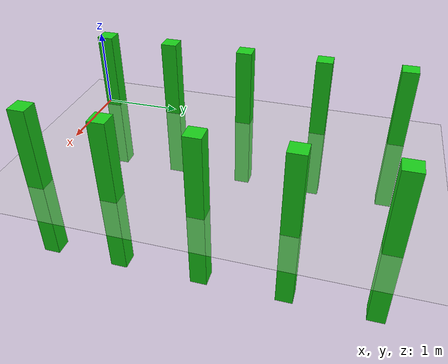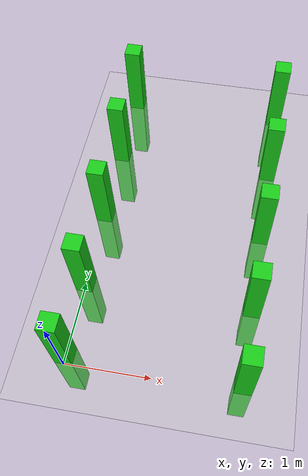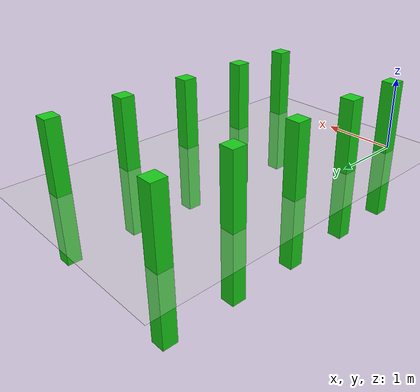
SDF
<?xml version="1.0" ?>
<sdf version="1.8">
    <world name="plant_row">
        <physics name="1ms" type="ignored">
            <max_step_size>0.01</max_step_size>
            <real_time_factor>1.0</real_time_factor>
        </physics>
        <plugin
            filename="gz-sim-physics-system"
            name="gz::sim::systems::Physics">
        </plugin>
        <plugin
            filename="libignition-gazebo-user-commands-system.so"
            name="ignition::gazebo::systems::UserCommands">
        </plugin>
        <plugin
            filename="gz-sim-scene-broadcaster-system"
            name="ignition::gazebo::systems::SceneBroadcaster">
        </plugin>
        <plugin
            filename="gz-sim-sensors-system"
            name="gz::sim::systems::Sensors">
            <render_engine>ogre2</render_engine>
        </plugin>
        <plugin
            filename="gz-sim-contact-system"
            name="gz::sim::systems::Contact">
        </plugin>
        <plugin
            filename="gz-sim-imu-system"
            name="gz::sim::systems::Imu">
        </plugin>

        <light type="directional" name="sun">
            <cast_shadows>true</cast_shadows>
            <pose>0 0 10 0 0 0</pose>
            <diffuse>0.8 0.8 0.8 1</diffuse>
            <specular>0.2 0.2 0.2 1</specular>
            <attenuation>
                <range>1000</range>
                <constant>0.9</constant>
                <linear>0.01</linear>
                <quadratic>0.001</quadratic>
            </attenuation>
            <direction>-0.5 0.1 -0.9</direction>
        </light>

        <model name="ground_plane">
            <static>true</static>
            <link name="link">
                <collision name="collision">
                <geometry>
                    <plane>
                    <normal>0 0 1</normal>
                    </plane>
                </geometry>
                </collision>
                <visual name="visual">
                <geometry>
                    <plane>
                    <normal>0 0 1</normal>
                    <size>100 100</size>
                    </plane>
                </geometry>
                <material>
                    <ambient>0.8 0.8 0.8 1</ambient>
                    <diffuse>0.8 0.8 0.8 1</diffuse>
                    <specular>0.8 0.8 0.8 1</specular>
                </material>
                </visual>
            </link>
        </model>

        <!-- Plant Row 1 -->
        <model name="plant_row_1">
            <static>true</static>
            <pose>0 0 0 0 0 0</pose>
            <link name="row_link">
                <visual name="plant1">
                    <pose>0 0.1 0 0 0 0</pose>
                    <geometry>
                        <box>
                            <size>0.2 0.2 2</size>
                        </box>
                    </geometry>
                    <material>
                        <ambient>0.1 0.8 0.1 1</ambient>
                        <diffuse>0.1 0.8 0.1 1</diffuse>
                        <specular>0.1 0.8 0.1 1</specular>
                    </material>
                </visual>
                <visual name="plant2">
                    <pose>0 1 0 0 0 0</pose>
                    <geometry>
                        <box>
                            <size>0.2 0.2 2</size>
                        </box>
                    </geometry>
                    <material>
                        <ambient>0.1 0.8 0.1 1</ambient>
                        <diffuse>0.1 0.8 0.1 1</diffuse>
                        <specular>0.1 0.8 0.1 1</specular>
                    </material>
                </visual>
                <visual name="plant3">
                    <pose>0 2 0 0 0 0</pose>
                    <geometry>
                        <box>
                            <size>0.2 0.2 2</size>
                        </box>
                    </geometry>
                    <material>
                        <ambient>0.1 0.8 0.1 1</ambient>
                        <diffuse>0.1 0.8 0.1 1</diffuse>
                        <specular>0.1 0.8 0.1 1</specular>
                    </material>
                </visual>
                 <visual name="plant4">
                    <pose>0 3 0 0 0 0</pose>
                    <geometry>
                        <box>
                            <size>0.2 0.2 2</size>
                        </box>
                    </geometry>
                    <material>
                        <ambient>0.1 0.8 0.1 1</ambient>
                        <diffuse>0.1 0.8 0.1 1</diffuse>
                        <specular>0.1 0.8 0.1 1</specular>
                    </material>
                </visual>
                 <visual name="plant5">
                    <pose>0 4 0 0 0 0</pose>
                    <geometry>
                        <box>
                            <size>0.2 0.2 2</size>
                        </box>
                    </geometry>
                    <material>
                        <ambient>0.1 0.8 0.1 1</ambient>
                        <diffuse>0.1 0.8 0.1 1</diffuse>
                        <specular>0.1 0.8 0.1 1</specular>
                    </material>
                </visual>
            </link>
        </model>

        <!-- Plant Row 2 -->
        <model name="plant_row_2">
            <static>true</static>
            <pose>2 0 0 0 0 0</pose>
            <link name="row_link">
               <visual name="plant1">
                    <pose>0 0.1 0 0 0 0</pose>
                    <geometry>
                        <box>
                            <size>0.2 0.2 2</size>
                        </box>
                    </geometry>
                    <material>
                        <ambient>0.1 0.8 0.1 1</ambient>
                        <diffuse>0.1 0.8 0.1 1</diffuse>
                        <specular>0.1 0.8 0.1 1</specular>
                    </material>
                </visual>
                <visual name="plant2">
                    <pose>0 1 0 0 0 0</pose>
                    <geometry>
                        <box>
                            <size>0.2 0.2 2</size>
                        </box>
                    </geometry>
                    <material>
                        <ambient>0.1 0.8 0.1 1</ambient>
                        <diffuse>0.1 0.8 0.1 1</diffuse>
                        <specular>0.1 0.8 0.1 1</specular>
                    </material>
                </visual>
                <visual name="plant3">
                    <pose>0 2 0 0 0 0</pose>
                    <geometry>
                        <box>
                            <size>0.2 0.2 2</size>
                        </box>
                    </geometry>
                    <material>
                        <ambient>0.1 0.8 0.1 1</ambient>
                        <diffuse>0.1 0.8 0.1 1</diffuse>
                        <specular>0.1 0.8 0.1 1</specular>
                    </material>
                </visual>
                 <visual name="plant4">
                    <pose>0 3 0 0 0 0</pose>
                    <geometry>
                        <box>
                            <size>0.2 0.2 2</size>
                        </box>
                    </geometry>
                    <material>
                        <ambient>0.1 0.8 0.1 1</ambient>
                        <diffuse>0.1 0.8 0.1 1</diffuse>
                        <specular>0.1 0.8 0.1 1</specular>
                    </material>
                </visual>
                 <visual name="plant5">
                    <pose>0 4 0 0 0 0</pose>
                    <geometry>
                        <box>
                            <size>0.2 0.2 2</size>
                        </box>
                    </geometry>
                    <material>
                        <ambient>0.1 0.8 0.1 1</ambient>
                        <diffuse>0.1 0.8 0.1 1</diffuse>
                        <specular>0.1 0.8 0.1 1</specular>
                    </material>
                </visual>
            </link>
        </model>

    </world>
</sdf>
